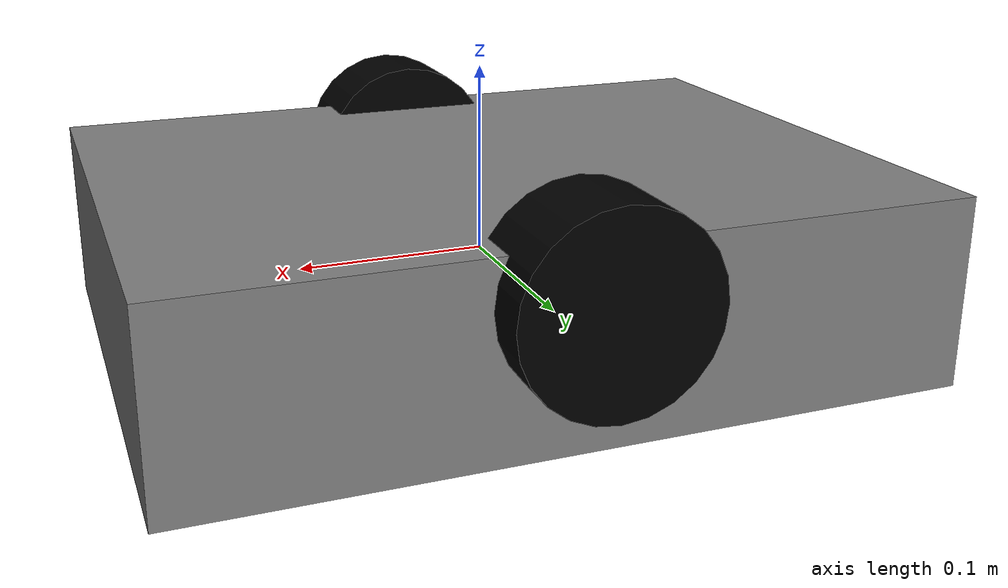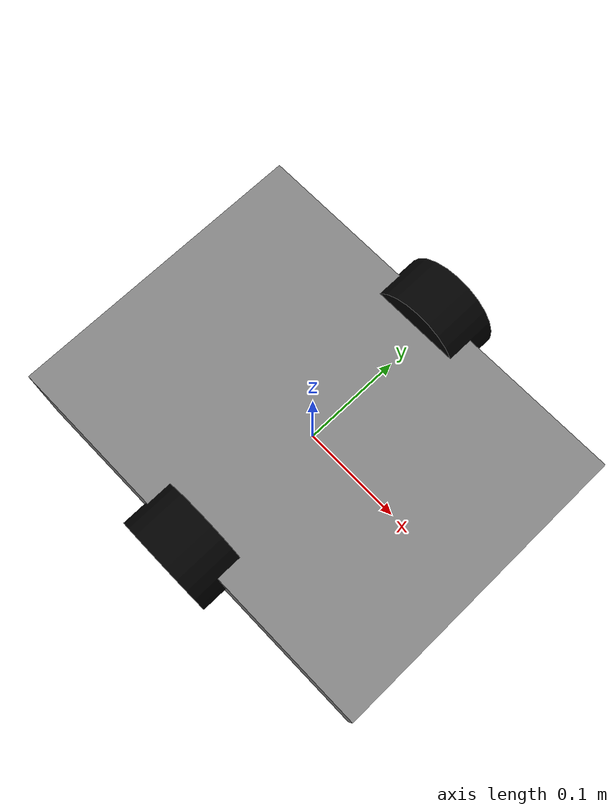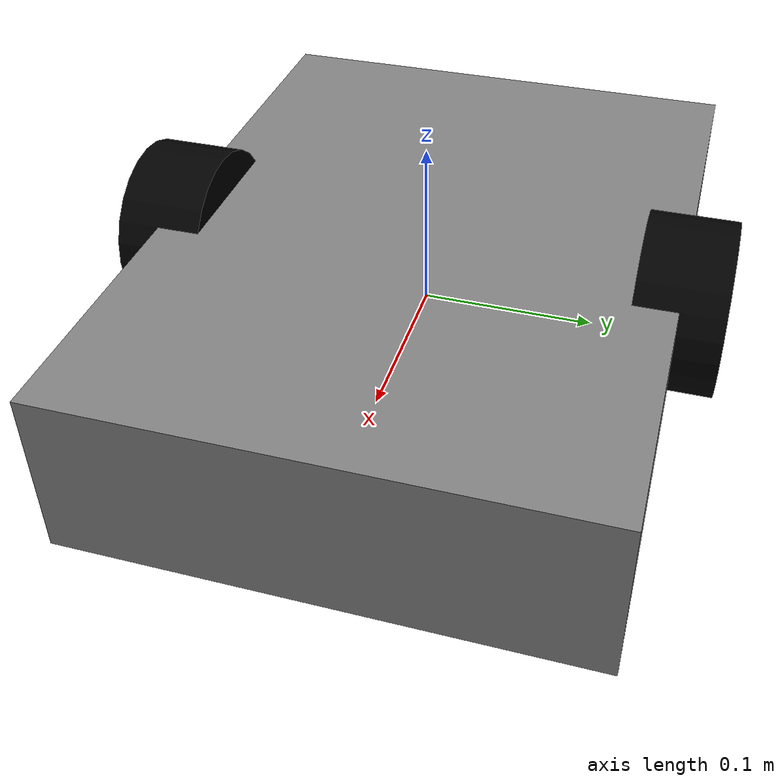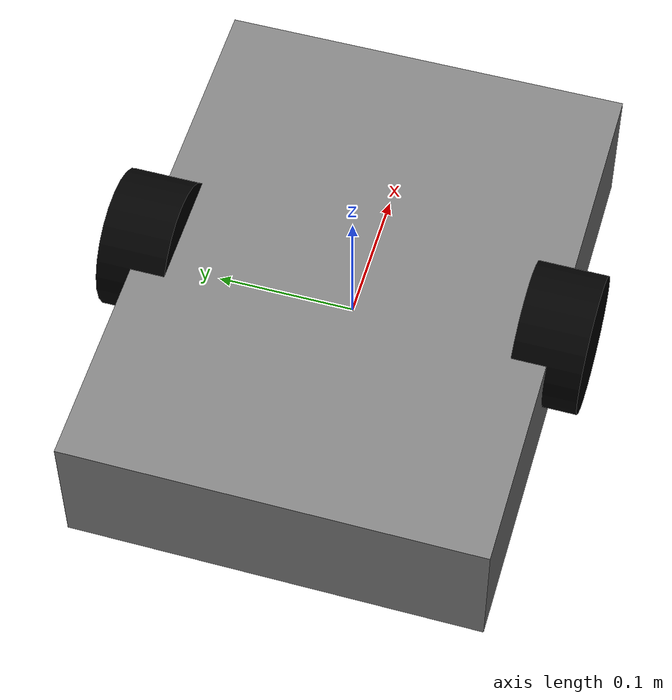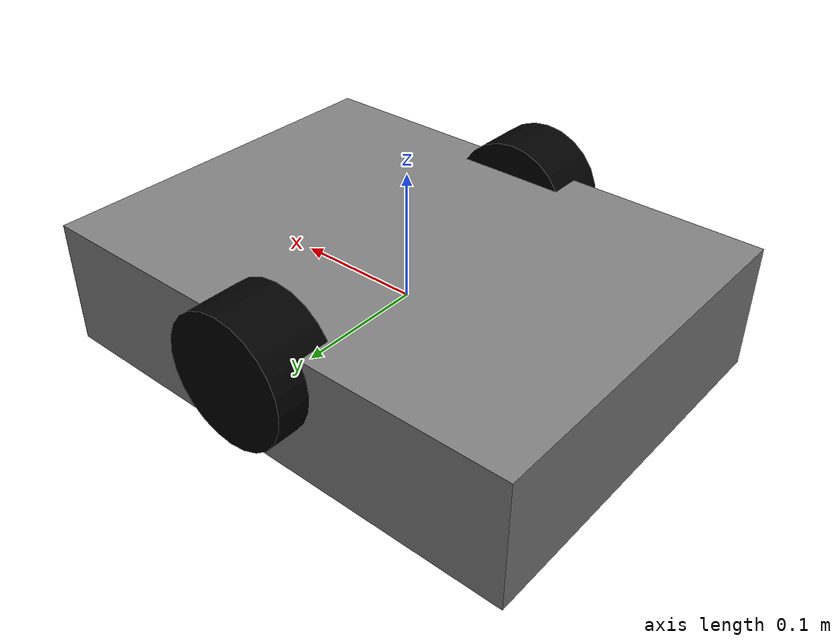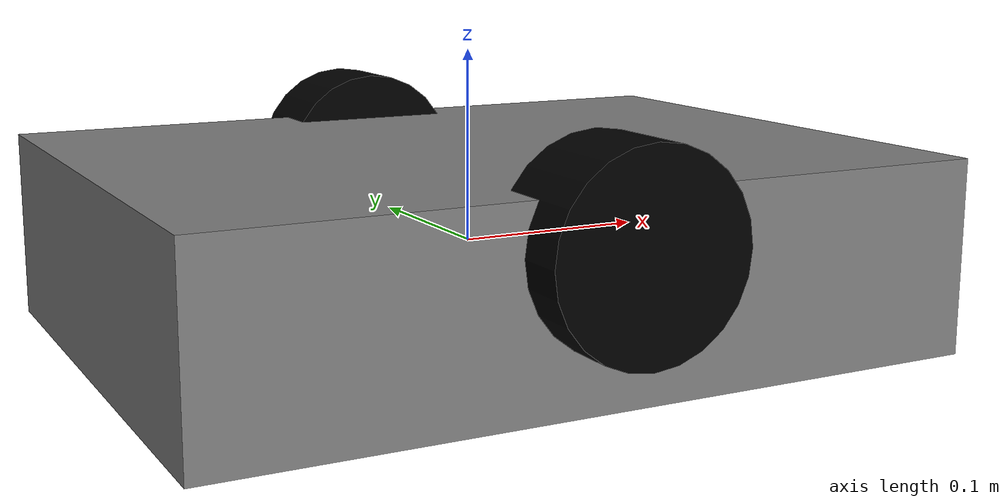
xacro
<?xml version="1.0"?>
<robot name="simple_amr" xmlns:xacro="http://www.ros.org/wiki/xacro">

  <!-- Base Link: A box -->
  <link name="base_link">
    <visual>
      <geometry>
        <box size="0.4 0.3 0.1"/>
      </geometry>
      <material name="gray">
        <color rgba="0.5 0.5 0.5 1"/>
      </material>
    </visual>
    <collision>
      <geometry>
        <box size="0.4 0.3 0.1"/>
      </geometry>
    </collision>
    <inertial>
      <mass value="5"/>
      <inertia ixx="0.1" iyy="0.1" izz="0.1" ixy="0.0" ixz="0.0" iyz="0.0"/>
    </inertial>
  </link>

  <!-- Left Wheel -->
  <link name="left_wheel">
    <visual>
      <geometry>
        <cylinder length="0.05" radius="0.05"/>
      </geometry>
      <origin xyz="0 0 0" rpy="1.5708 0 0"/>
      <material name="black">
        <color rgba="0 0 0 1"/>
      </material>
    </visual>
    <collision>
      <geometry>
        <cylinder length="0.05" radius="0.05"/>
      </geometry>
      <origin xyz="0 0 0" rpy="1.5708 0 0"/>
    </collision>
    <inertial>
      <mass value="1"/>
      <inertia ixx="0.01" iyy="0.01" izz="0.01" ixy="0.0" ixz="0.0" iyz="0.0"/>
    </inertial>
  </link>

  <!-- Right Wheel -->
  <link name="right_wheel">
    <visual>
      <geometry>
        <cylinder length="0.05" radius="0.05"/>
      </geometry>
      <origin xyz="0 0 0" rpy="1.5708 0 0"/>
      <material name="black"/>
    </visual>
    <collision>
      <geometry>
        <cylinder length="0.05" radius="0.05"/>
      </geometry>
      <origin xyz="0 0 0" rpy="1.5708 0 0"/>
    </collision>
    <inertial>
      <mass value="1"/>
      <inertia ixx="0.01" iyy="0.01" izz="0.01" ixy="0.0" ixz="0.0" iyz="0.0"/>
    </inertial>
  </link>

  <!-- Joints -->
  <joint name="left_wheel_joint" type="continuous">
    <parent link="base_link"/>
    <child link="left_wheel"/>
    <origin xyz="0.0 0.15 0.025" rpy="0 0 0"/>
    <axis xyz="0 1 0"/>
  </joint>

  <joint name="right_wheel_joint" type="continuous">
    <parent link="base_link"/>
    <child link="right_wheel"/>
    <origin xyz="0.0 -0.15 0.025" rpy="0 0 0"/>
    <axis xyz="0 1 0"/>
  </joint>

  <!-- Gazebo plugins (optional for wheel rotation) -->
  <gazebo>
    <plugin name="diff_drive" filename="libgazebo_ros_diff_drive.so">
      <ros>
        <remapping>cmd_vel:=cmd_vel</remapping>
      </ros>
      <left_joint>left_wheel_joint</left_joint>
      <right_joint>right_wheel_joint</right_joint>
      <wheel_separation>0.3</wheel_separation>
      <wheel_diameter>0.1</wheel_diameter>
      <publish_wheel_tf>true</publish_wheel_tf>
    </plugin>
  </gazebo>

</robot>
